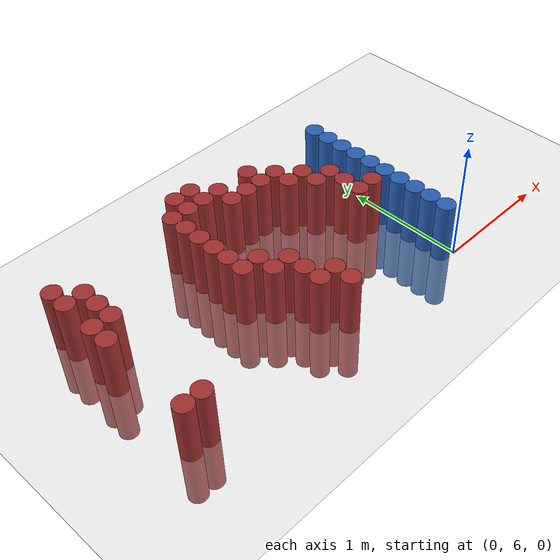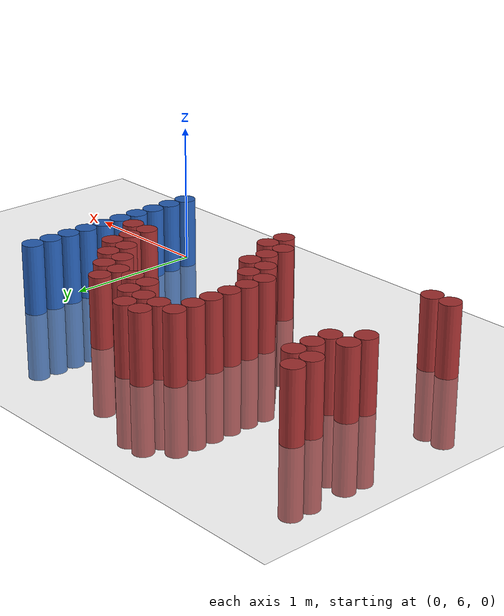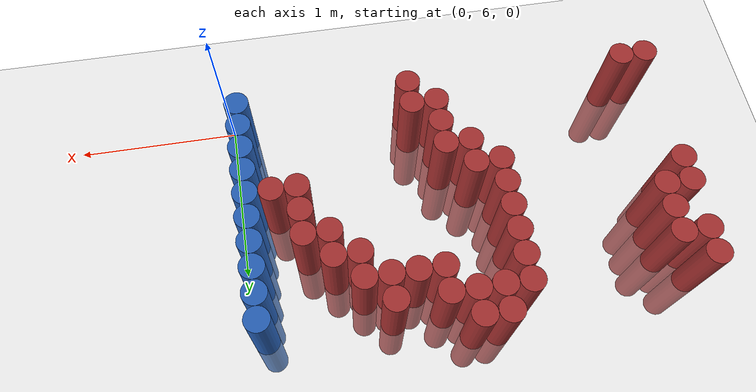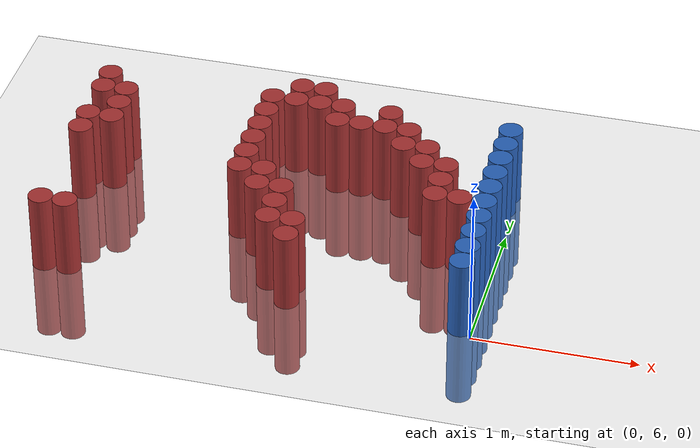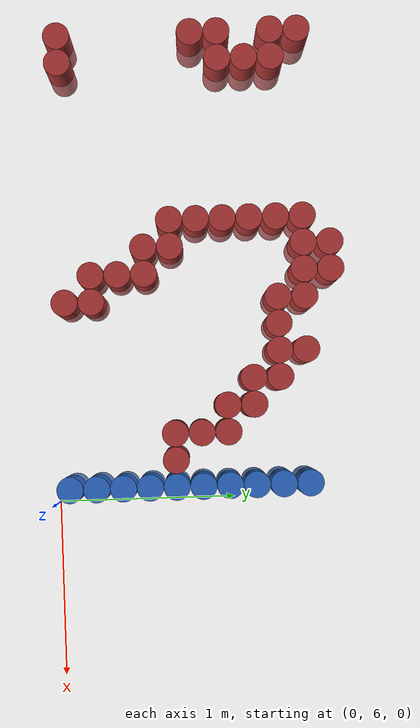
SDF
<sdf version="1.6">
 <world name="default">
  <model name="ground_plane">
   <static>1</static>
   <link name="link">
    <collision name="collision">
     <geometry><plane><normal>0 0 1</normal><size>100 100</size></plane></geometry>
     <surface><friction><ode><mu>100</mu><mu2>50</mu2></ode></friction></surface>
    </collision>
    <visual name="visual">
     <cast_shadows>0</cast_shadows>
     <geometry><plane><normal>0 0 1</normal><size>100 100</size></plane></geometry>
     <material>
      <script><uri>file://media/materials/scripts/gazebo.material</uri><name>Gazebo/Grey</name></script>
     </material>
    </visual>
   </link>
  </model>
  <model name="unit_cylinder_222">
   <static>1</static>
   <pose>-2.625000 6.075000 0.000000 0.000000 0.000000 0.000000</pose>
   <link name="link">
    <inertial>
     <mass>1</mass>
     <inertia><ixx>0.145833</ixx><ixy>0</ixy><ixz>0</ixz><iyy>0.145833</iyy><iyz>0</iyz><izz>0.125</izz></inertia>
    </inertial>
    <collision name="collision">
     <geometry><cylinder><radius>0.075000</radius><length>1</length></cylinder></geometry>
    </collision>
    <visual name="visual">
     <geometry><cylinder><radius>0.075000</radius><length>1</length></cylinder></geometry>
     <material>
      <ambient>0.648000 0.192000 0.192000 1</ambient>
      <diffuse>0.648000 0.192000 0.192000 1</diffuse>
     </material>
     <material>
      <script><name>Gazebo/Grey</name><uri>file://media/materials/scripts/gazebo.material</uri></script>
     </material>
    </visual>
   </link>
  </model>
  <model name="unit_cylinder_223">
   <static>1</static>
   <pose>-2.625000 6.825000 0.000000 0.000000 0.000000 0.000000</pose>
   <link name="link">
    <inertial>
     <mass>1</mass>
     <inertia><ixx>0.145833</ixx><ixy>0</ixy><ixz>0</ixz><iyy>0.145833</iyy><iyz>0</iyz><izz>0.125</izz></inertia>
    </inertial>
    <collision name="collision">
     <geometry><cylinder><radius>0.075000</radius><length>1</length></cylinder></geometry>
    </collision>
    <visual name="visual">
     <geometry><cylinder><radius>0.075000</radius><length>1</length></cylinder></geometry>
     <material>
      <ambient>0.648000 0.192000 0.192000 1</ambient>
      <diffuse>0.648000 0.192000 0.192000 1</diffuse>
     </material>
     <material>
      <script><name>Gazebo/Grey</name><uri>file://media/materials/scripts/gazebo.material</uri></script>
     </material>
    </visual>
   </link>
  </model>
  <model name="unit_cylinder_224">
   <static>1</static>
   <pose>-2.625000 6.975000 0.000000 0.000000 0.000000 0.000000</pose>
   <link name="link">
    <inertial>
     <mass>1</mass>
     <inertia><ixx>0.145833</ixx><ixy>0</ixy><ixz>0</ixz><iyy>0.145833</iyy><iyz>0</iyz><izz>0.125</izz></inertia>
    </inertial>
    <collision name="collision">
     <geometry><cylinder><radius>0.075000</radius><length>1</length></cylinder></geometry>
    </collision>
    <visual name="visual">
     <geometry><cylinder><radius>0.075000</radius><length>1</length></cylinder></geometry>
     <material>
      <ambient>0.648000 0.192000 0.192000 1</ambient>
      <diffuse>0.648000 0.192000 0.192000 1</diffuse>
     </material>
     <material>
      <script><name>Gazebo/Grey</name><uri>file://media/materials/scripts/gazebo.material</uri></script>
     </material>
    </visual>
   </link>
  </model>
  <model name="unit_cylinder_225">
   <static>1</static>
   <pose>-2.625000 7.275000 0.000000 0.000000 0.000000 0.000000</pose>
   <link name="link">
    <inertial>
     <mass>1</mass>
     <inertia><ixx>0.145833</ixx><ixy>0</ixy><ixz>0</ixz><iyy>0.145833</iyy><iyz>0</iyz><izz>0.125</izz></inertia>
    </inertial>
    <collision name="collision">
     <geometry><cylinder><radius>0.075000</radius><length>1</length></cylinder></geometry>
    </collision>
    <visual name="visual">
     <geometry><cylinder><radius>0.075000</radius><length>1</length></cylinder></geometry>
     <material>
      <ambient>0.648000 0.192000 0.192000 1</ambient>
      <diffuse>0.648000 0.192000 0.192000 1</diffuse>
     </material>
     <material>
      <script><name>Gazebo/Grey</name><uri>file://media/materials/scripts/gazebo.material</uri></script>
     </material>
    </visual>
   </link>
  </model>
  <model name="unit_cylinder_226">
   <static>1</static>
   <pose>-2.625000 7.425000 0.000000 0.000000 0.000000 0.000000</pose>
   <link name="link">
    <inertial>
     <mass>1</mass>
     <inertia><ixx>0.145833</ixx><ixy>0</ixy><ixz>0</ixz><iyy>0.145833</iyy><iyz>0</iyz><izz>0.125</izz></inertia>
    </inertial>
    <collision name="collision">
     <geometry><cylinder><radius>0.075000</radius><length>1</length></cylinder></geometry>
    </collision>
    <visual name="visual">
     <geometry><cylinder><radius>0.075000</radius><length>1</length></cylinder></geometry>
     <material>
      <ambient>0.648000 0.192000 0.192000 1</ambient>
      <diffuse>0.648000 0.192000 0.192000 1</diffuse>
     </material>
     <material>
      <script><name>Gazebo/Grey</name><uri>file://media/materials/scripts/gazebo.material</uri></script>
     </material>
    </visual>
   </link>
  </model>
  <model name="unit_cylinder_230">
   <static>1</static>
   <pose>-2.475000 6.075000 0.000000 0.000000 0.000000 0.000000</pose>
   <link name="link">
    <inertial>
     <mass>1</mass>
     <inertia><ixx>0.145833</ixx><ixy>0</ixy><ixz>0</ixz><iyy>0.145833</iyy><iyz>0</iyz><izz>0.125</izz></inertia>
    </inertial>
    <collision name="collision">
     <geometry><cylinder><radius>0.075000</radius><length>1</length></cylinder></geometry>
    </collision>
    <visual name="visual">
     <geometry><cylinder><radius>0.075000</radius><length>1</length></cylinder></geometry>
     <material>
      <ambient>0.648000 0.192000 0.192000 1</ambient>
      <diffuse>0.648000 0.192000 0.192000 1</diffuse>
     </material>
     <material>
      <script><name>Gazebo/Grey</name><uri>file://media/materials/scripts/gazebo.material</uri></script>
     </material>
    </visual>
   </link>
  </model>
  <model name="unit_cylinder_231">
   <static>1</static>
   <pose>-2.475000 6.975000 0.000000 0.000000 0.000000 0.000000</pose>
   <link name="link">
    <inertial>
     <mass>1</mass>
     <inertia><ixx>0.145833</ixx><ixy>0</ixy><ixz>0</ixz><iyy>0.145833</iyy><iyz>0</iyz><izz>0.125</izz></inertia>
    </inertial>
    <collision name="collision">
     <geometry><cylinder><radius>0.075000</radius><length>1</length></cylinder></geometry>
    </collision>
    <visual name="visual">
     <geometry><cylinder><radius>0.075000</radius><length>1</length></cylinder></geometry>
     <material>
      <ambient>0.648000 0.192000 0.192000 1</ambient>
      <diffuse>0.648000 0.192000 0.192000 1</diffuse>
     </material>
     <material>
      <script><name>Gazebo/Grey</name><uri>file://media/materials/scripts/gazebo.material</uri></script>
     </material>
    </visual>
   </link>
  </model>
  <model name="unit_cylinder_232">
   <static>1</static>
   <pose>-2.475000 7.125000 0.000000 0.000000 0.000000 0.000000</pose>
   <link name="link">
    <inertial>
     <mass>1</mass>
     <inertia><ixx>0.145833</ixx><ixy>0</ixy><ixz>0</ixz><iyy>0.145833</iyy><iyz>0</iyz><izz>0.125</izz></inertia>
    </inertial>
    <collision name="collision">
     <geometry><cylinder><radius>0.075000</radius><length>1</length></cylinder></geometry>
    </collision>
    <visual name="visual">
     <geometry><cylinder><radius>0.075000</radius><length>1</length></cylinder></geometry>
     <material>
      <ambient>0.648000 0.192000 0.192000 1</ambient>
      <diffuse>0.648000 0.192000 0.192000 1</diffuse>
     </material>
     <material>
      <script><name>Gazebo/Grey</name><uri>file://media/materials/scripts/gazebo.material</uri></script>
     </material>
    </visual>
   </link>
  </model>
  <model name="unit_cylinder_233">
   <static>1</static>
   <pose>-2.475000 7.275000 0.000000 0.000000 0.000000 0.000000</pose>
   <link name="link">
    <inertial>
     <mass>1</mass>
     <inertia><ixx>0.145833</ixx><ixy>0</ixy><ixz>0</ixz><iyy>0.145833</iyy><iyz>0</iyz><izz>0.125</izz></inertia>
    </inertial>
    <collision name="collision">
     <geometry><cylinder><radius>0.075000</radius><length>1</length></cylinder></geometry>
    </collision>
    <visual name="visual">
     <geometry><cylinder><radius>0.075000</radius><length>1</length></cylinder></geometry>
     <material>
      <ambient>0.648000 0.192000 0.192000 1</ambient>
      <diffuse>0.648000 0.192000 0.192000 1</diffuse>
     </material>
     <material>
      <script><name>Gazebo/Grey</name><uri>file://media/materials/scripts/gazebo.material</uri></script>
     </material>
    </visual>
   </link>
  </model>
  <model name="unit_cylinder_237">
   <static>1</static>
   <pose>-1.575000 6.675000 0.000000 0.000000 0.000000 0.000000</pose>
   <link name="link">
    <inertial>
     <mass>1</mass>
     <inertia><ixx>0.145833</ixx><ixy>0</ixy><ixz>0</ixz><iyy>0.145833</iyy><iyz>0</iyz><izz>0.125</izz></inertia>
    </inertial>
    <collision name="collision">
     <geometry><cylinder><radius>0.075000</radius><length>1</length></cylinder></geometry>
    </collision>
    <visual name="visual">
     <geometry><cylinder><radius>0.075000</radius><length>1</length></cylinder></geometry>
     <material>
      <ambient>0.648000 0.192000 0.192000 1</ambient>
      <diffuse>0.648000 0.192000 0.192000 1</diffuse>
     </material>
     <material>
      <script><name>Gazebo/Grey</name><uri>file://media/materials/scripts/gazebo.material</uri></script>
     </material>
    </visual>
   </link>
  </model>
  <model name="unit_cylinder_238">
   <static>1</static>
   <pose>-1.575000 6.825000 0.000000 0.000000 0.000000 0.000000</pose>
   <link name="link">
    <inertial>
     <mass>1</mass>
     <inertia><ixx>0.145833</ixx><ixy>0</ixy><ixz>0</ixz><iyy>0.145833</iyy><iyz>0</iyz><izz>0.125</izz></inertia>
    </inertial>
    <collision name="collision">
     <geometry><cylinder><radius>0.075000</radius><length>1</length></cylinder></geometry>
    </collision>
    <visual name="visual">
     <geometry><cylinder><radius>0.075000</radius><length>1</length></cylinder></geometry>
     <material>
      <ambient>0.648000 0.192000 0.192000 1</ambient>
      <diffuse>0.648000 0.192000 0.192000 1</diffuse>
     </material>
     <material>
      <script><name>Gazebo/Grey</name><uri>file://media/materials/scripts/gazebo.material</uri></script>
     </material>
    </visual>
   </link>
  </model>
  <model name="unit_cylinder_239">
   <static>1</static>
   <pose>-1.575000 6.975000 0.000000 0.000000 0.000000 0.000000</pose>
   <link name="link">
    <inertial>
     <mass>1</mass>
     <inertia><ixx>0.145833</ixx><ixy>0</ixy><ixz>0</ixz><iyy>0.145833</iyy><iyz>0</iyz><izz>0.125</izz></inertia>
    </inertial>
    <collision name="collision">
     <geometry><cylinder><radius>0.075000</radius><length>1</length></cylinder></geometry>
    </collision>
    <visual name="visual">
     <geometry><cylinder><radius>0.075000</radius><length>1</length></cylinder></geometry>
     <material>
      <ambient>0.648000 0.192000 0.192000 1</ambient>
      <diffuse>0.648000 0.192000 0.192000 1</diffuse>
     </material>
     <material>
      <script><name>Gazebo/Grey</name><uri>file://media/materials/scripts/gazebo.material</uri></script>
     </material>
    </visual>
   </link>
  </model>
  <model name="unit_cylinder_240">
   <static>1</static>
   <pose>-1.575000 7.125000 0.000000 0.000000 0.000000 0.000000</pose>
   <link name="link">
    <inertial>
     <mass>1</mass>
     <inertia><ixx>0.145833</ixx><ixy>0</ixy><ixz>0</ixz><iyy>0.145833</iyy><iyz>0</iyz><izz>0.125</izz></inertia>
    </inertial>
    <collision name="collision">
     <geometry><cylinder><radius>0.075000</radius><length>1</length></cylinder></geometry>
    </collision>
    <visual name="visual">
     <geometry><cylinder><radius>0.075000</radius><length>1</length></cylinder></geometry>
     <material>
      <ambient>0.648000 0.192000 0.192000 1</ambient>
      <diffuse>0.648000 0.192000 0.192000 1</diffuse>
     </material>
     <material>
      <script><name>Gazebo/Grey</name><uri>file://media/materials/scripts/gazebo.material</uri></script>
     </material>
    </visual>
   </link>
  </model>
  <model name="unit_cylinder_241">
   <static>1</static>
   <pose>-1.575000 7.275000 0.000000 0.000000 0.000000 0.000000</pose>
   <link name="link">
    <inertial>
     <mass>1</mass>
     <inertia><ixx>0.145833</ixx><ixy>0</ixy><ixz>0</ixz><iyy>0.145833</iyy><iyz>0</iyz><izz>0.125</izz></inertia>
    </inertial>
    <collision name="collision">
     <geometry><cylinder><radius>0.075000</radius><length>1</length></cylinder></geometry>
    </collision>
    <visual name="visual">
     <geometry><cylinder><radius>0.075000</radius><length>1</length></cylinder></geometry>
     <material>
      <ambient>0.648000 0.192000 0.192000 1</ambient>
      <diffuse>0.648000 0.192000 0.192000 1</diffuse>
     </material>
     <material>
      <script><name>Gazebo/Grey</name><uri>file://media/materials/scripts/gazebo.material</uri></script>
     </material>
    </visual>
   </link>
  </model>
  <model name="unit_cylinder_242">
   <static>1</static>
   <pose>-1.575000 7.425000 0.000000 0.000000 0.000000 0.000000</pose>
   <link name="link">
    <inertial>
     <mass>1</mass>
     <inertia><ixx>0.145833</ixx><ixy>0</ixy><ixz>0</ixz><iyy>0.145833</iyy><iyz>0</iyz><izz>0.125</izz></inertia>
    </inertial>
    <collision name="collision">
     <geometry><cylinder><radius>0.075000</radius><length>1</length></cylinder></geometry>
    </collision>
    <visual name="visual">
     <geometry><cylinder><radius>0.075000</radius><length>1</length></cylinder></geometry>
     <material>
      <ambient>0.648000 0.192000 0.192000 1</ambient>
      <diffuse>0.648000 0.192000 0.192000 1</diffuse>
     </material>
     <material>
      <script><name>Gazebo/Grey</name><uri>file://media/materials/scripts/gazebo.material</uri></script>
     </material>
    </visual>
   </link>
  </model>
  <model name="unit_cylinder_246">
   <static>1</static>
   <pose>-1.425000 6.525000 0.000000 0.000000 0.000000 0.000000</pose>
   <link name="link">
    <inertial>
     <mass>1</mass>
     <inertia><ixx>0.145833</ixx><ixy>0</ixy><ixz>0</ixz><iyy>0.145833</iyy><iyz>0</iyz><izz>0.125</izz></inertia>
    </inertial>
    <collision name="collision">
     <geometry><cylinder><radius>0.075000</radius><length>1</length></cylinder></geometry>
    </collision>
    <visual name="visual">
     <geometry><cylinder><radius>0.075000</radius><length>1</length></cylinder></geometry>
     <material>
      <ambient>0.648000 0.192000 0.192000 1</ambient>
      <diffuse>0.648000 0.192000 0.192000 1</diffuse>
     </material>
     <material>
      <script><name>Gazebo/Grey</name><uri>file://media/materials/scripts/gazebo.material</uri></script>
     </material>
    </visual>
   </link>
  </model>
  <model name="unit_cylinder_247">
   <static>1</static>
   <pose>-1.425000 6.675000 0.000000 0.000000 0.000000 0.000000</pose>
   <link name="link">
    <inertial>
     <mass>1</mass>
     <inertia><ixx>0.145833</ixx><ixy>0</ixy><ixz>0</ixz><iyy>0.145833</iyy><iyz>0</iyz><izz>0.125</izz></inertia>
    </inertial>
    <collision name="collision">
     <geometry><cylinder><radius>0.075000</radius><length>1</length></cylinder></geometry>
    </collision>
    <visual name="visual">
     <geometry><cylinder><radius>0.075000</radius><length>1</length></cylinder></geometry>
     <material>
      <ambient>0.648000 0.192000 0.192000 1</ambient>
      <diffuse>0.648000 0.192000 0.192000 1</diffuse>
     </material>
     <material>
      <script><name>Gazebo/Grey</name><uri>file://media/materials/scripts/gazebo.material</uri></script>
     </material>
    </visual>
   </link>
  </model>
  <model name="unit_cylinder_248">
   <static>1</static>
   <pose>-1.425000 7.425000 0.000000 0.000000 0.000000 0.000000</pose>
   <link name="link">
    <inertial>
     <mass>1</mass>
     <inertia><ixx>0.145833</ixx><ixy>0</ixy><ixz>0</ixz><iyy>0.145833</iyy><iyz>0</iyz><izz>0.125</izz></inertia>
    </inertial>
    <collision name="collision">
     <geometry><cylinder><radius>0.075000</radius><length>1</length></cylinder></geometry>
    </collision>
    <visual name="visual">
     <geometry><cylinder><radius>0.075000</radius><length>1</length></cylinder></geometry>
     <material>
      <ambient>0.648000 0.192000 0.192000 1</ambient>
      <diffuse>0.648000 0.192000 0.192000 1</diffuse>
     </material>
     <material>
      <script><name>Gazebo/Grey</name><uri>file://media/materials/scripts/gazebo.material</uri></script>
     </material>
    </visual>
   </link>
  </model>
  <model name="unit_cylinder_249">
   <static>1</static>
   <pose>-1.425000 7.575000 0.000000 0.000000 0.000000 0.000000</pose>
   <link name="link">
    <inertial>
     <mass>1</mass>
     <inertia><ixx>0.145833</ixx><ixy>0</ixy><ixz>0</ixz><iyy>0.145833</iyy><iyz>0</iyz><izz>0.125</izz></inertia>
    </inertial>
    <collision name="collision">
     <geometry><cylinder><radius>0.075000</radius><length>1</length></cylinder></geometry>
    </collision>
    <visual name="visual">
     <geometry><cylinder><radius>0.075000</radius><length>1</length></cylinder></geometry>
     <material>
      <ambient>0.648000 0.192000 0.192000 1</ambient>
      <diffuse>0.648000 0.192000 0.192000 1</diffuse>
     </material>
     <material>
      <script><name>Gazebo/Grey</name><uri>file://media/materials/scripts/gazebo.material</uri></script>
     </material>
    </visual>
   </link>
  </model>
  <model name="unit_cylinder_253">
   <static>1</static>
   <pose>-1.275000 6.225000 0.000000 0.000000 0.000000 0.000000</pose>
   <link name="link">
    <inertial>
     <mass>1</mass>
     <inertia><ixx>0.145833</ixx><ixy>0</ixy><ixz>0</ixz><iyy>0.145833</iyy><iyz>0</iyz><izz>0.125</izz></inertia>
    </inertial>
    <collision name="collision">
     <geometry><cylinder><radius>0.075000</radius><length>1</length></cylinder></geometry>
    </collision>
    <visual name="visual">
     <geometry><cylinder><radius>0.075000</radius><length>1</length></cylinder></geometry>
     <material>
      <ambient>0.648000 0.192000 0.192000 1</ambient>
      <diffuse>0.648000 0.192000 0.192000 1</diffuse>
     </material>
     <material>
      <script><name>Gazebo/Grey</name><uri>file://media/materials/scripts/gazebo.material</uri></script>
     </material>
    </visual>
   </link>
  </model>
  <model name="unit_cylinder_254">
   <static>1</static>
   <pose>-1.275000 6.375000 0.000000 0.000000 0.000000 0.000000</pose>
   <link name="link">
    <inertial>
     <mass>1</mass>
     <inertia><ixx>0.145833</ixx><ixy>0</ixy><ixz>0</ixz><iyy>0.145833</iyy><iyz>0</iyz><izz>0.125</izz></inertia>
    </inertial>
    <collision name="collision">
     <geometry><cylinder><radius>0.075000</radius><length>1</length></cylinder></geometry>
    </collision>
    <visual name="visual">
     <geometry><cylinder><radius>0.075000</radius><length>1</length></cylinder></geometry>
     <material>
      <ambient>0.648000 0.192000 0.192000 1</ambient>
      <diffuse>0.648000 0.192000 0.192000 1</diffuse>
     </material>
     <material>
      <script><name>Gazebo/Grey</name><uri>file://media/materials/scripts/gazebo.material</uri></script>
     </material>
    </visual>
   </link>
  </model>
  <model name="unit_cylinder_255">
   <static>1</static>
   <pose>-1.275000 6.525000 0.000000 0.000000 0.000000 0.000000</pose>
   <link name="link">
    <inertial>
     <mass>1</mass>
     <inertia><ixx>0.145833</ixx><ixy>0</ixy><ixz>0</ixz><iyy>0.145833</iyy><iyz>0</iyz><izz>0.125</izz></inertia>
    </inertial>
    <collision name="collision">
     <geometry><cylinder><radius>0.075000</radius><length>1</length></cylinder></geometry>
    </collision>
    <visual name="visual">
     <geometry><cylinder><radius>0.075000</radius><length>1</length></cylinder></geometry>
     <material>
      <ambient>0.648000 0.192000 0.192000 1</ambient>
      <diffuse>0.648000 0.192000 0.192000 1</diffuse>
     </material>
     <material>
      <script><name>Gazebo/Grey</name><uri>file://media/materials/scripts/gazebo.material</uri></script>
     </material>
    </visual>
   </link>
  </model>
  <model name="unit_cylinder_256">
   <static>1</static>
   <pose>-1.275000 7.425000 0.000000 0.000000 0.000000 0.000000</pose>
   <link name="link">
    <inertial>
     <mass>1</mass>
     <inertia><ixx>0.145833</ixx><ixy>0</ixy><ixz>0</ixz><iyy>0.145833</iyy><iyz>0</iyz><izz>0.125</izz></inertia>
    </inertial>
    <collision name="collision">
     <geometry><cylinder><radius>0.075000</radius><length>1</length></cylinder></geometry>
    </collision>
    <visual name="visual">
     <geometry><cylinder><radius>0.075000</radius><length>1</length></cylinder></geometry>
     <material>
      <ambient>0.648000 0.192000 0.192000 1</ambient>
      <diffuse>0.648000 0.192000 0.192000 1</diffuse>
     </material>
     <material>
      <script><name>Gazebo/Grey</name><uri>file://media/materials/scripts/gazebo.material</uri></script>
     </material>
    </visual>
   </link>
  </model>
  <model name="unit_cylinder_257">
   <static>1</static>
   <pose>-1.275000 7.575000 0.000000 0.000000 0.000000 0.000000</pose>
   <link name="link">
    <inertial>
     <mass>1</mass>
     <inertia><ixx>0.145833</ixx><ixy>0</ixy><ixz>0</ixz><iyy>0.145833</iyy><iyz>0</iyz><izz>0.125</izz></inertia>
    </inertial>
    <collision name="collision">
     <geometry><cylinder><radius>0.075000</radius><length>1</length></cylinder></geometry>
    </collision>
    <visual name="visual">
     <geometry><cylinder><radius>0.075000</radius><length>1</length></cylinder></geometry>
     <material>
      <ambient>0.648000 0.192000 0.192000 1</ambient>
      <diffuse>0.648000 0.192000 0.192000 1</diffuse>
     </material>
     <material>
      <script><name>Gazebo/Grey</name><uri>file://media/materials/scripts/gazebo.material</uri></script>
     </material>
    </visual>
   </link>
  </model>
  <model name="unit_cylinder_264">
   <static>1</static>
   <pose>-1.125000 6.075000 0.000000 0.000000 0.000000 0.000000</pose>
   <link name="link">
    <inertial>
     <mass>1</mass>
     <inertia><ixx>0.145833</ixx><ixy>0</ixy><ixz>0</ixz><iyy>0.145833</iyy><iyz>0</iyz><izz>0.125</izz></inertia>
    </inertial>
    <collision name="collision">
     <geometry><cylinder><radius>0.075000</radius><length>1</length></cylinder></geometry>
    </collision>
    <visual name="visual">
     <geometry><cylinder><radius>0.075000</radius><length>1</length></cylinder></geometry>
     <material>
      <ambient>0.648000 0.192000 0.192000 1</ambient>
      <diffuse>0.648000 0.192000 0.192000 1</diffuse>
     </material>
     <material>
      <script><name>Gazebo/Grey</name><uri>file://media/materials/scripts/gazebo.material</uri></script>
     </material>
    </visual>
   </link>
  </model>
  <model name="unit_cylinder_265">
   <static>1</static>
   <pose>-1.125000 6.225000 0.000000 0.000000 0.000000 0.000000</pose>
   <link name="link">
    <inertial>
     <mass>1</mass>
     <inertia><ixx>0.145833</ixx><ixy>0</ixy><ixz>0</ixz><iyy>0.145833</iyy><iyz>0</iyz><izz>0.125</izz></inertia>
    </inertial>
    <collision name="collision">
     <geometry><cylinder><radius>0.075000</radius><length>1</length></cylinder></geometry>
    </collision>
    <visual name="visual">
     <geometry><cylinder><radius>0.075000</radius><length>1</length></cylinder></geometry>
     <material>
      <ambient>0.648000 0.192000 0.192000 1</ambient>
      <diffuse>0.648000 0.192000 0.192000 1</diffuse>
     </material>
     <material>
      <script><name>Gazebo/Grey</name><uri>file://media/materials/scripts/gazebo.material</uri></script>
     </material>
    </visual>
   </link>
  </model>
  <model name="unit_cylinder_266">
   <static>1</static>
   <pose>-1.125000 7.275000 0.000000 0.000000 0.000000 0.000000</pose>
   <link name="link">
    <inertial>
     <mass>1</mass>
     <inertia><ixx>0.145833</ixx><ixy>0</ixy><ixz>0</ixz><iyy>0.145833</iyy><iyz>0</iyz><izz>0.125</izz></inertia>
    </inertial>
    <collision name="collision">
     <geometry><cylinder><radius>0.075000</radius><length>1</length></cylinder></geometry>
    </collision>
    <visual name="visual">
     <geometry><cylinder><radius>0.075000</radius><length>1</length></cylinder></geometry>
     <material>
      <ambient>0.648000 0.192000 0.192000 1</ambient>
      <diffuse>0.648000 0.192000 0.192000 1</diffuse>
     </material>
     <material>
      <script><name>Gazebo/Grey</name><uri>file://media/materials/scripts/gazebo.material</uri></script>
     </material>
    </visual>
   </link>
  </model>
  <model name="unit_cylinder_267">
   <static>1</static>
   <pose>-1.125000 7.425000 0.000000 0.000000 0.000000 0.000000</pose>
   <link name="link">
    <inertial>
     <mass>1</mass>
     <inertia><ixx>0.145833</ixx><ixy>0</ixy><ixz>0</ixz><iyy>0.145833</iyy><iyz>0</iyz><izz>0.125</izz></inertia>
    </inertial>
    <collision name="collision">
     <geometry><cylinder><radius>0.075000</radius><length>1</length></cylinder></geometry>
    </collision>
    <visual name="visual">
     <geometry><cylinder><radius>0.075000</radius><length>1</length></cylinder></geometry>
     <material>
      <ambient>0.648000 0.192000 0.192000 1</ambient>
      <diffuse>0.648000 0.192000 0.192000 1</diffuse>
     </material>
     <material>
      <script><name>Gazebo/Grey</name><uri>file://media/materials/scripts/gazebo.material</uri></script>
     </material>
    </visual>
   </link>
  </model>
  <model name="unit_cylinder_274">
   <static>1</static>
   <pose>-0.975000 7.275000 0.000000 0.000000 0.000000 0.000000</pose>
   <link name="link">
    <inertial>
     <mass>1</mass>
     <inertia><ixx>0.145833</ixx><ixy>0</ixy><ixz>0</ixz><iyy>0.145833</iyy><iyz>0</iyz><izz>0.125</izz></inertia>
    </inertial>
    <collision name="collision">
     <geometry><cylinder><radius>0.075000</radius><length>1</length></cylinder></geometry>
    </collision>
    <visual name="visual">
     <geometry><cylinder><radius>0.075000</radius><length>1</length></cylinder></geometry>
     <material>
      <ambient>0.648000 0.192000 0.192000 1</ambient>
      <diffuse>0.648000 0.192000 0.192000 1</diffuse>
     </material>
     <material>
      <script><name>Gazebo/Grey</name><uri>file://media/materials/scripts/gazebo.material</uri></script>
     </material>
    </visual>
   </link>
  </model>
  <model name="unit_cylinder_280">
   <static>1</static>
   <pose>-0.825000 7.275000 0.000000 0.000000 0.000000 0.000000</pose>
   <link name="link">
    <inertial>
     <mass>1</mass>
     <inertia><ixx>0.145833</ixx><ixy>0</ixy><ixz>0</ixz><iyy>0.145833</iyy><iyz>0</iyz><izz>0.125</izz></inertia>
    </inertial>
    <collision name="collision">
     <geometry><cylinder><radius>0.075000</radius><length>1</length></cylinder></geometry>
    </collision>
    <visual name="visual">
     <geometry><cylinder><radius>0.075000</radius><length>1</length></cylinder></geometry>
     <material>
      <ambient>0.648000 0.192000 0.192000 1</ambient>
      <diffuse>0.648000 0.192000 0.192000 1</diffuse>
     </material>
     <material>
      <script><name>Gazebo/Grey</name><uri>file://media/materials/scripts/gazebo.material</uri></script>
     </material>
    </visual>
   </link>
  </model>
  <model name="unit_cylinder_281">
   <static>1</static>
   <pose>-0.825000 7.425000 0.000000 0.000000 0.000000 0.000000</pose>
   <link name="link">
    <inertial>
     <mass>1</mass>
     <inertia><ixx>0.145833</ixx><ixy>0</ixy><ixz>0</ixz><iyy>0.145833</iyy><iyz>0</iyz><izz>0.125</izz></inertia>
    </inertial>
    <collision name="collision">
     <geometry><cylinder><radius>0.075000</radius><length>1</length></cylinder></geometry>
    </collision>
    <visual name="visual">
     <geometry><cylinder><radius>0.075000</radius><length>1</length></cylinder></geometry>
     <material>
      <ambient>0.648000 0.192000 0.192000 1</ambient>
      <diffuse>0.648000 0.192000 0.192000 1</diffuse>
     </material>
     <material>
      <script><name>Gazebo/Grey</name><uri>file://media/materials/scripts/gazebo.material</uri></script>
     </material>
    </visual>
   </link>
  </model>
  <model name="unit_cylinder_290">
   <static>1</static>
   <pose>-0.675000 7.125000 0.000000 0.000000 0.000000 0.000000</pose>
   <link name="link">
    <inertial>
     <mass>1</mass>
     <inertia><ixx>0.145833</ixx><ixy>0</ixy><ixz>0</ixz><iyy>0.145833</iyy><iyz>0</iyz><izz>0.125</izz></inertia>
    </inertial>
    <collision name="collision">
     <geometry><cylinder><radius>0.075000</radius><length>1</length></cylinder></geometry>
    </collision>
    <visual name="visual">
     <geometry><cylinder><radius>0.075000</radius><length>1</length></cylinder></geometry>
     <material>
      <ambient>0.648000 0.192000 0.192000 1</ambient>
      <diffuse>0.648000 0.192000 0.192000 1</diffuse>
     </material>
     <material>
      <script><name>Gazebo/Grey</name><uri>file://media/materials/scripts/gazebo.material</uri></script>
     </material>
    </visual>
   </link>
  </model>
  <model name="unit_cylinder_291">
   <static>1</static>
   <pose>-0.675000 7.275000 0.000000 0.000000 0.000000 0.000000</pose>
   <link name="link">
    <inertial>
     <mass>1</mass>
     <inertia><ixx>0.145833</ixx><ixy>0</ixy><ixz>0</ixz><iyy>0.145833</iyy><iyz>0</iyz><izz>0.125</izz></inertia>
    </inertial>
    <collision name="collision">
     <geometry><cylinder><radius>0.075000</radius><length>1</length></cylinder></geometry>
    </collision>
    <visual name="visual">
     <geometry><cylinder><radius>0.075000</radius><length>1</length></cylinder></geometry>
     <material>
      <ambient>0.648000 0.192000 0.192000 1</ambient>
      <diffuse>0.648000 0.192000 0.192000 1</diffuse>
     </material>
     <material>
      <script><name>Gazebo/Grey</name><uri>file://media/materials/scripts/gazebo.material</uri></script>
     </material>
    </visual>
   </link>
  </model>
  <model name="unit_cylinder_299">
   <static>1</static>
   <pose>-0.525000 6.975000 0.000000 0.000000 0.000000 0.000000</pose>
   <link name="link">
    <inertial>
     <mass>1</mass>
     <inertia><ixx>0.145833</ixx><ixy>0</ixy><ixz>0</ixz><iyy>0.145833</iyy><iyz>0</iyz><izz>0.125</izz></inertia>
    </inertial>
    <collision name="collision">
     <geometry><cylinder><radius>0.075000</radius><length>1</length></cylinder></geometry>
    </collision>
    <visual name="visual">
     <geometry><cylinder><radius>0.075000</radius><length>1</length></cylinder></geometry>
     <material>
      <ambient>0.648000 0.192000 0.192000 1</ambient>
      <diffuse>0.648000 0.192000 0.192000 1</diffuse>
     </material>
     <material>
      <script><name>Gazebo/Grey</name><uri>file://media/materials/scripts/gazebo.material</uri></script>
     </material>
    </visual>
   </link>
  </model>
  <model name="unit_cylinder_300">
   <static>1</static>
   <pose>-0.525000 7.125000 0.000000 0.000000 0.000000 0.000000</pose>
   <link name="link">
    <inertial>
     <mass>1</mass>
     <inertia><ixx>0.145833</ixx><ixy>0</ixy><ixz>0</ixz><iyy>0.145833</iyy><iyz>0</iyz><izz>0.125</izz></inertia>
    </inertial>
    <collision name="collision">
     <geometry><cylinder><radius>0.075000</radius><length>1</length></cylinder></geometry>
    </collision>
    <visual name="visual">
     <geometry><cylinder><radius>0.075000</radius><length>1</length></cylinder></geometry>
     <material>
      <ambient>0.648000 0.192000 0.192000 1</ambient>
      <diffuse>0.648000 0.192000 0.192000 1</diffuse>
     </material>
     <material>
      <script><name>Gazebo/Grey</name><uri>file://media/materials/scripts/gazebo.material</uri></script>
     </material>
    </visual>
   </link>
  </model>
  <model name="unit_cylinder_308">
   <static>1</static>
   <pose>-0.375000 6.675000 0.000000 0.000000 0.000000 0.000000</pose>
   <link name="link">
    <inertial>
     <mass>1</mass>
     <inertia><ixx>0.145833</ixx><ixy>0</ixy><ixz>0</ixz><iyy>0.145833</iyy><iyz>0</iyz><izz>0.125</izz></inertia>
    </inertial>
    <collision name="collision">
     <geometry><cylinder><radius>0.075000</radius><length>1</length></cylinder></geometry>
    </collision>
    <visual name="visual">
     <geometry><cylinder><radius>0.075000</radius><length>1</length></cylinder></geometry>
     <material>
      <ambient>0.648000 0.192000 0.192000 1</ambient>
      <diffuse>0.648000 0.192000 0.192000 1</diffuse>
     </material>
     <material>
      <script><name>Gazebo/Grey</name><uri>file://media/materials/scripts/gazebo.material</uri></script>
     </material>
    </visual>
   </link>
  </model>
  <model name="unit_cylinder_309">
   <static>1</static>
   <pose>-0.375000 6.825000 0.000000 0.000000 0.000000 0.000000</pose>
   <link name="link">
    <inertial>
     <mass>1</mass>
     <inertia><ixx>0.145833</ixx><ixy>0</ixy><ixz>0</ixz><iyy>0.145833</iyy><iyz>0</iyz><izz>0.125</izz></inertia>
    </inertial>
    <collision name="collision">
     <geometry><cylinder><radius>0.075000</radius><length>1</length></cylinder></geometry>
    </collision>
    <visual name="visual">
     <geometry><cylinder><radius>0.075000</radius><length>1</length></cylinder></geometry>
     <material>
      <ambient>0.648000 0.192000 0.192000 1</ambient>
      <diffuse>0.648000 0.192000 0.192000 1</diffuse>
     </material>
     <material>
      <script><name>Gazebo/Grey</name><uri>file://media/materials/scripts/gazebo.material</uri></script>
     </material>
    </visual>
   </link>
  </model>
  <model name="unit_cylinder_310">
   <static>1</static>
   <pose>-0.375000 6.975000 0.000000 0.000000 0.000000 0.000000</pose>
   <link name="link">
    <inertial>
     <mass>1</mass>
     <inertia><ixx>0.145833</ixx><ixy>0</ixy><ixz>0</ixz><iyy>0.145833</iyy><iyz>0</iyz><izz>0.125</izz></inertia>
    </inertial>
    <collision name="collision">
     <geometry><cylinder><radius>0.075000</radius><length>1</length></cylinder></geometry>
    </collision>
    <visual name="visual">
     <geometry><cylinder><radius>0.075000</radius><length>1</length></cylinder></geometry>
     <material>
      <ambient>0.648000 0.192000 0.192000 1</ambient>
      <diffuse>0.648000 0.192000 0.192000 1</diffuse>
     </material>
     <material>
      <script><name>Gazebo/Grey</name><uri>file://media/materials/scripts/gazebo.material</uri></script>
     </material>
    </visual>
   </link>
  </model>
  <model name="unit_cylinder_314">
   <static>1</static>
   <pose>-0.225000 6.675000 0.000000 0.000000 0.000000 0.000000</pose>
   <link name="link">
    <inertial>
     <mass>1</mass>
     <inertia><ixx>0.145833</ixx><ixy>0</ixy><ixz>0</ixz><iyy>0.145833</iyy><iyz>0</iyz><izz>0.125</izz></inertia>
    </inertial>
    <collision name="collision">
     <geometry><cylinder><radius>0.075000</radius><length>1</length></cylinder></geometry>
    </collision>
    <visual name="visual">
     <geometry><cylinder><radius>0.075000</radius><length>1</length></cylinder></geometry>
     <material>
      <ambient>0.648000 0.192000 0.192000 1</ambient>
      <diffuse>0.648000 0.192000 0.192000 1</diffuse>
     </material>
     <material>
      <script><name>Gazebo/Grey</name><uri>file://media/materials/scripts/gazebo.material</uri></script>
     </material>
    </visual>
   </link>
  </model>
  <model name="unit_cylinder_323">
   <static>1</static>
   <pose>-0.075000 6.075000 0.000000 0.000000 0.000000 0.000000</pose>
   <link name="link">
    <inertial>
     <mass>1</mass>
     <inertia><ixx>0.145833</ixx><ixy>0</ixy><ixz>0</ixz><iyy>0.145833</iyy><iyz>0</iyz><izz>0.125</izz></inertia>
    </inertial>
    <collision name="collision">
     <geometry><cylinder><radius>0.075000</radius><length>1</length></cylinder></geometry>
    </collision>
    <visual name="visual">
     <geometry><cylinder><radius>0.075000</radius><length>1</length></cylinder></geometry>
     <material>
      <ambient>0.152000 0.379000 0.720000 1</ambient>
      <diffuse>0.152000 0.379000 0.720000 1</diffuse>
     </material>
     <material>
      <script><name>Gazebo/Grey</name><uri>file://media/materials/scripts/gazebo.material</uri></script>
     </material>
    </visual>
   </link>
  </model>
  <model name="unit_cylinder_324">
   <static>1</static>
   <pose>-0.075000 6.225000 0.000000 0.000000 0.000000 0.000000</pose>
   <link name="link">
    <inertial>
     <mass>1</mass>
     <inertia><ixx>0.145833</ixx><ixy>0</ixy><ixz>0</ixz><iyy>0.145833</iyy><iyz>0</iyz><izz>0.125</izz></inertia>
    </inertial>
    <collision name="collision">
     <geometry><cylinder><radius>0.075000</radius><length>1</length></cylinder></geometry>
    </collision>
    <visual name="visual">
     <geometry><cylinder><radius>0.075000</radius><length>1</length></cylinder></geometry>
     <material>
      <ambient>0.152000 0.379000 0.720000 1</ambient>
      <diffuse>0.152000 0.379000 0.720000 1</diffuse>
     </material>
     <material>
      <script><name>Gazebo/Grey</name><uri>file://media/materials/scripts/gazebo.material</uri></script>
     </material>
    </visual>
   </link>
  </model>
  <model name="unit_cylinder_325">
   <static>1</static>
   <pose>-0.075000 6.375000 0.000000 0.000000 0.000000 0.000000</pose>
   <link name="link">
    <inertial>
     <mass>1</mass>
     <inertia><ixx>0.145833</ixx><ixy>0</ixy><ixz>0</ixz><iyy>0.145833</iyy><iyz>0</iyz><izz>0.125</izz></inertia>
    </inertial>
    <collision name="collision">
     <geometry><cylinder><radius>0.075000</radius><length>1</length></cylinder></geometry>
    </collision>
    <visual name="visual">
     <geometry><cylinder><radius>0.075000</radius><length>1</length></cylinder></geometry>
     <material>
      <ambient>0.152000 0.379000 0.720000 1</ambient>
      <diffuse>0.152000 0.379000 0.720000 1</diffuse>
     </material>
     <material>
      <script><name>Gazebo/Grey</name><uri>file://media/materials/scripts/gazebo.material</uri></script>
     </material>
    </visual>
   </link>
  </model>
  <model name="unit_cylinder_326">
   <static>1</static>
   <pose>-0.075000 6.525000 0.000000 0.000000 0.000000 0.000000</pose>
   <link name="link">
    <inertial>
     <mass>1</mass>
     <inertia><ixx>0.145833</ixx><ixy>0</ixy><ixz>0</ixz><iyy>0.145833</iyy><iyz>0</iyz><izz>0.125</izz></inertia>
    </inertial>
    <collision name="collision">
     <geometry><cylinder><radius>0.075000</radius><length>1</length></cylinder></geometry>
    </collision>
    <visual name="visual">
     <geometry><cylinder><radius>0.075000</radius><length>1</length></cylinder></geometry>
     <material>
      <ambient>0.152000 0.379000 0.720000 1</ambient>
      <diffuse>0.152000 0.379000 0.720000 1</diffuse>
     </material>
     <material>
      <script><name>Gazebo/Grey</name><uri>file://media/materials/scripts/gazebo.material</uri></script>
     </material>
    </visual>
   </link>
  </model>
  <model name="unit_cylinder_327">
   <static>1</static>
   <pose>-0.075000 6.675000 0.000000 0.000000 0.000000 0.000000</pose>
   <link name="link">
    <inertial>
     <mass>1</mass>
     <inertia><ixx>0.145833</ixx><ixy>0</ixy><ixz>0</ixz><iyy>0.145833</iyy><iyz>0</iyz><izz>0.125</izz></inertia>
    </inertial>
    <collision name="collision">
     <geometry><cylinder><radius>0.075000</radius><length>1</length></cylinder></geometry>
    </collision>
    <visual name="visual">
     <geometry><cylinder><radius>0.075000</radius><length>1</length></cylinder></geometry>
     <material>
      <ambient>0.152000 0.379000 0.720000 1</ambient>
      <diffuse>0.152000 0.379000 0.720000 1</diffuse>
     </material>
     <material>
      <script><name>Gazebo/Grey</name><uri>file://media/materials/scripts/gazebo.material</uri></script>
     </material>
    </visual>
   </link>
  </model>
  <model name="unit_cylinder_328">
   <static>1</static>
   <pose>-0.075000 6.825000 0.000000 0.000000 0.000000 0.000000</pose>
   <link name="link">
    <inertial>
     <mass>1</mass>
     <inertia><ixx>0.145833</ixx><ixy>0</ixy><ixz>0</ixz><iyy>0.145833</iyy><iyz>0</iyz><izz>0.125</izz></inertia>
    </inertial>
    <collision name="collision">
     <geometry><cylinder><radius>0.075000</radius><length>1</length></cylinder></geometry>
    </collision>
    <visual name="visual">
     <geometry><cylinder><radius>0.075000</radius><length>1</length></cylinder></geometry>
     <material>
      <ambient>0.152000 0.379000 0.720000 1</ambient>
      <diffuse>0.152000 0.379000 0.720000 1</diffuse>
     </material>
     <material>
      <script><name>Gazebo/Grey</name><uri>file://media/materials/scripts/gazebo.material</uri></script>
     </material>
    </visual>
   </link>
  </model>
  <model name="unit_cylinder_329">
   <static>1</static>
   <pose>-0.075000 6.975000 0.000000 0.000000 0.000000 0.000000</pose>
   <link name="link">
    <inertial>
     <mass>1</mass>
     <inertia><ixx>0.145833</ixx><ixy>0</ixy><ixz>0</ixz><iyy>0.145833</iyy><iyz>0</iyz><izz>0.125</izz></inertia>
    </inertial>
    <collision name="collision">
     <geometry><cylinder><radius>0.075000</radius><length>1</length></cylinder></geometry>
    </collision>
    <visual name="visual">
     <geometry><cylinder><radius>0.075000</radius><length>1</length></cylinder></geometry>
     <material>
      <ambient>0.152000 0.379000 0.720000 1</ambient>
      <diffuse>0.152000 0.379000 0.720000 1</diffuse>
     </material>
     <material>
      <script><name>Gazebo/Grey</name><uri>file://media/materials/scripts/gazebo.material</uri></script>
     </material>
    </visual>
   </link>
  </model>
  <model name="unit_cylinder_330">
   <static>1</static>
   <pose>-0.075000 7.125000 0.000000 0.000000 0.000000 0.000000</pose>
   <link name="link">
    <inertial>
     <mass>1</mass>
     <inertia><ixx>0.145833</ixx><ixy>0</ixy><ixz>0</ixz><iyy>0.145833</iyy><iyz>0</iyz><izz>0.125</izz></inertia>
    </inertial>
    <collision name="collision">
     <geometry><cylinder><radius>0.075000</radius><length>1</length></cylinder></geometry>
    </collision>
    <visual name="visual">
     <geometry><cylinder><radius>0.075000</radius><length>1</length></cylinder></geometry>
     <material>
      <ambient>0.152000 0.379000 0.720000 1</ambient>
      <diffuse>0.152000 0.379000 0.720000 1</diffuse>
     </material>
     <material>
      <script><name>Gazebo/Grey</name><uri>file://media/materials/scripts/gazebo.material</uri></script>
     </material>
    </visual>
   </link>
  </model>
  <model name="unit_cylinder_331">
   <static>1</static>
   <pose>-0.075000 7.275000 0.000000 0.000000 0.000000 0.000000</pose>
   <link name="link">
    <inertial>
     <mass>1</mass>
     <inertia><ixx>0.145833</ixx><ixy>0</ixy><ixz>0</ixz><iyy>0.145833</iyy><iyz>0</iyz><izz>0.125</izz></inertia>
    </inertial>
    <collision name="collision">
     <geometry><cylinder><radius>0.075000</radius><length>1</length></cylinder></geometry>
    </collision>
    <visual name="visual">
     <geometry><cylinder><radius>0.075000</radius><length>1</length></cylinder></geometry>
     <material>
      <ambient>0.152000 0.379000 0.720000 1</ambient>
      <diffuse>0.152000 0.379000 0.720000 1</diffuse>
     </material>
     <material>
      <script><name>Gazebo/Grey</name><uri>file://media/materials/scripts/gazebo.material</uri></script>
     </material>
    </visual>
   </link>
  </model>
  <model name="unit_cylinder_332">
   <static>1</static>
   <pose>-0.075000 7.425000 0.000000 0.000000 0.000000 0.000000</pose>
   <link name="link">
    <inertial>
     <mass>1</mass>
     <inertia><ixx>0.145833</ixx><ixy>0</ixy><ixz>0</ixz><iyy>0.145833</iyy><iyz>0</iyz><izz>0.125</izz></inertia>
    </inertial>
    <collision name="collision">
     <geometry><cylinder><radius>0.075000</radius><length>1</length></cylinder></geometry>
    </collision>
    <visual name="visual">
     <geometry><cylinder><radius>0.075000</radius><length>1</length></cylinder></geometry>
     <material>
      <ambient>0.152000 0.379000 0.720000 1</ambient>
      <diffuse>0.152000 0.379000 0.720000 1</diffuse>
     </material>
     <material>
      <script><name>Gazebo/Grey</name><uri>file://media/materials/scripts/gazebo.material</uri></script>
     </material>
    </visual>
   </link>
  </model>
 </world>
</sdf>
